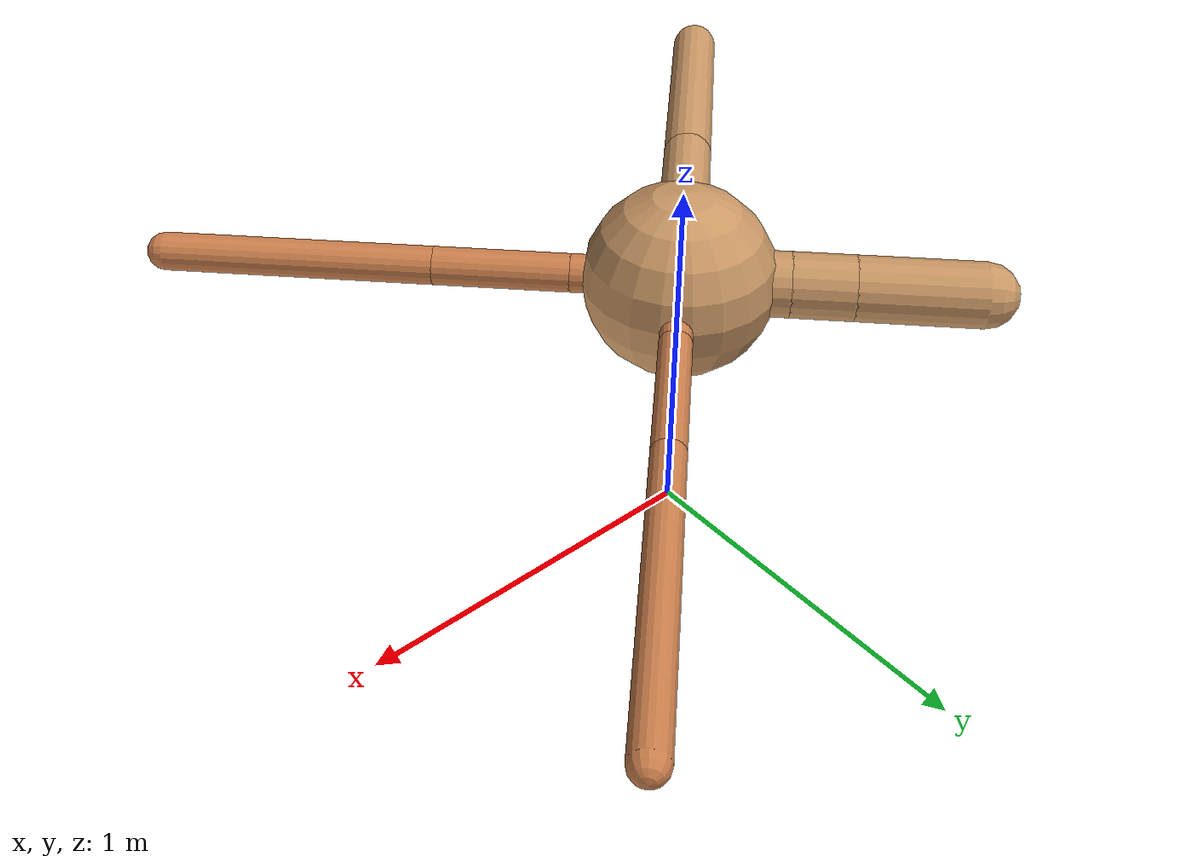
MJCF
<?xml version="1.0" ?>
<mujoco model="ant">

	<compiler angle="degree" coordinate="local" inertiafromgeom="true"/>

	<option integrator="RK4" timestep="0.01"/>

	<custom>

		<numeric data="0.0 0.0 0.55 1.0 0.0 0.0 0.0 0.0 1.0 0.0 -1.0 0.0 -1.0 0.0 1.0" name="init_qpos"/>

	</custom>

	<default>

		<joint armature="1" damping="1" limited="true"/>

		<geom conaffinity="0" condim="3" density="5.0" friction="1.5 0.1 0.1" margin="0.01" rgba="0.8 0.6 0.4 1"/>

	</default>

	<worldbody>

		<body name="torso" pos="0 0 0.75">

			<geom name="torso_geom" pos="0 0 0" size="0.25422678075395794" type="sphere"/>

			<!--joint armature="0" damping="0" limited="false" margin="0.01" name="root" pos="0 0 0" type="free"/-->

			<body name="front_left_leg" pos="0 0 0">

				<geom fromto="0 0 0 0.2 0.2 0" name="aux_1_geom" size="0.041911745345638976" type="capsule" rgba=".8 .5 .3 1"/>

				<body name="aux_1" pos="0.2 0.2 0">

					<joint axis="0 0 1" name="hip_1" pos="0.0 0.0 0.0" range="-40 40" type="hinge"/>

					<geom fromto="0 0 0 0.28138876909661475 0.28138876909661475 0" name="left_leg_geom" size="0.041911745345638976" type="capsule" rgba=".8 .5 .3 1"/>

					<body pos="0.28138876909661475 0.28138876909661475 0" name="front_left_foot">

						<joint axis="-1 1 0" name="ankle_1" pos="0.0 0.0 0.0" range="30 100" type="hinge"/>

						<geom fromto="0 0 0 0.5627775381932295 0.5627775381932295 0" name="left_ankle_geom" size="0.041911745345638976" type="capsule" rgba=".8 .5 .3 1"/>

					</body>

				</body>

			</body>

			<body name="front_right_leg" pos="0 0 0">

				<geom fromto="0 0 0 -0.2 0.2 0" name="aux_2_geom" size="0.08657771230121379" type="capsule"/>

				<body name="aux_2" pos="-0.2 0.2 0">

					<joint axis="0 0 1" name="hip_2" pos="0.0 0.0 0.0" range="-40 40" type="hinge"/>

					<geom fromto="0 0 0 -0.1159545555476508 0.1159545555476508 0" name="right_leg_geom" size="0.08657771230121379" type="capsule"/>

					<body pos="-0.1159545555476508 0.1159545555476508 0" name="front_right_foot">

						<joint axis="1 1 0" name="ankle_2" pos="0.0 0.0 0.0" range="-100 -30" type="hinge"/>

						<geom fromto="0 0 0 -0.2319091110953016 0.2319091110953016 0" name="right_ankle_geom" size="0.08657771230121379" type="capsule"/>

					</body>

				</body>

			</body>

			<body name="left_back_leg" pos="0 0 0">

				<geom fromto="0 0 0 -0.2 -0.2 0" name="aux_3_geom" size="0.07011487590896819" type="capsule"/>

				<body name="aux_3" pos="-0.2 -0.2 0">

					<joint axis="0 0 1" name="hip_3" pos="0.0 0.0 0.0" range="-40 40" type="hinge"/>

					<geom fromto="0 0 0 -0.2771733484036796 -0.2771733484036796 0" name="back_leg_geom" size="0.07011487590896819" type="capsule"/>

					<body pos="-0.2771733484036796 -0.2771733484036796 0" name="left_back_foot">

						<joint axis="-1 1 0" name="ankle_3" pos="0.0 0.0 0.0" range="-100 -30" type="hinge"/>

						<geom fromto="0 0 0 -0.5543466968073592 -0.5543466968073592 0" name="third_ankle_geom" size="0.07011487590896819" type="capsule"/>

					</body>

				</body>

			</body>

			<body name="right_back_leg" pos="0 0 0">

				<geom fromto="0 0 0 0.2 -0.2 0" name="aux_4_geom" size="0.05105403299706268" type="capsule" rgba=".8 .5 .3 1"/>

				<body name="aux_4" pos="0.2 -0.2 0">

					<joint axis="0 0 1" name="hip_4" pos="0.0 0.0 0.0" range="-40 40" type="hinge"/>

					<geom fromto="0 0 0 0.25478323410918424 -0.25478323410918424 0" name="rightback_leg_geom" size="0.05105403299706268" type="capsule" rgba=".8 .5 .3 1"/>

					<body pos="0.25478323410918424 -0.25478323410918424 0" name="right_back_foot">

						<joint axis="1 1 0" name="ankle_4" pos="0.0 0.0 0.0" range="30 100" type="hinge"/>

						<geom fromto="0 0 0 0.5095664682183685 -0.5095664682183685 0" name="fourth_ankle_geom" size="0.05105403299706268" type="capsule" rgba=".8 .5 .3 1"/>

					</body>

				</body>

			</body>

		</body>

	</worldbody>

	<actuator>

		<motor ctrllimited="true" ctrlrange="-1.0 1.0" joint="hip_4" gear="150"/>

		<motor ctrllimited="true" ctrlrange="-1.0 1.0" joint="ankle_4" gear="150"/>

		<motor ctrllimited="true" ctrlrange="-1.0 1.0" joint="hip_1" gear="150"/>

		<motor ctrllimited="true" ctrlrange="-1.0 1.0" joint="ankle_1" gear="150"/>

		<motor ctrllimited="true" ctrlrange="-1.0 1.0" joint="hip_2" gear="150"/>

		<motor ctrllimited="true" ctrlrange="-1.0 1.0" joint="ankle_2" gear="150"/>

		<motor ctrllimited="true" ctrlrange="-1.0 1.0" joint="hip_3" gear="150"/>

		<motor ctrllimited="true" ctrlrange="-1.0 1.0" joint="ankle_3" gear="150"/>

	</actuator>

</mujoco>
